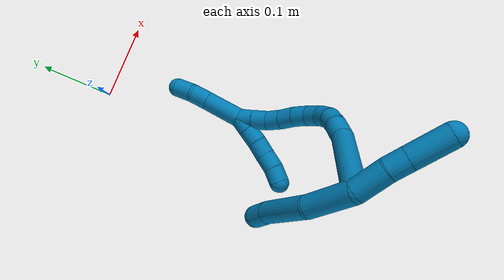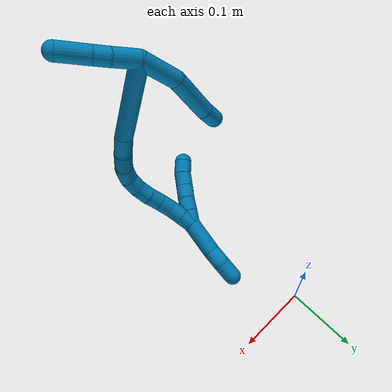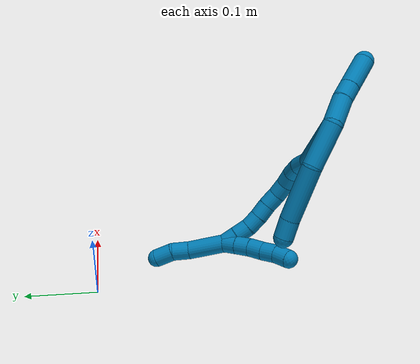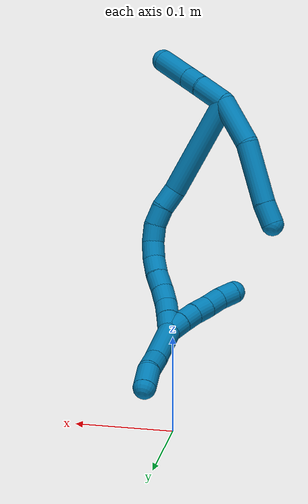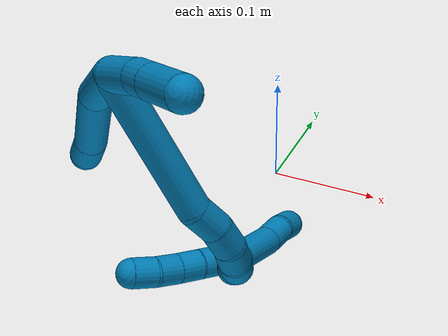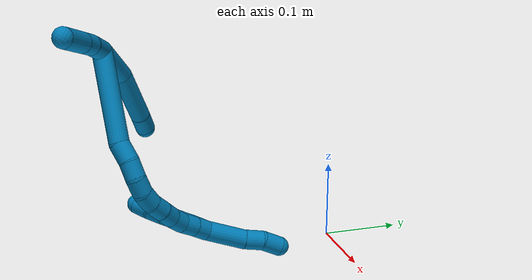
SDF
<sdf version="1.7">
 <world name="default">
  <model name="9">
   <static>0</static>
   <link name="9">
    <collision name="collision-cylinder-e_1_2_8">
     <pose>-0.006934 -0.016864 -0.021307 2.47207 -0.249863 -0.692938</pose>
     <geometry><cylinder><radius>0.0125</radius><length>0.056087</length></cylinder></geometry>
     <surface>
      <friction><ode><mu>1.16</mu><mu2>1.16</mu2><slip1>0</slip1><slip2>0</slip2></ode></friction>
      <contact><ode><kp>1e+06</kp><kd>1</kd><max_vel>0</max_vel><min_depth>0.001</min_depth></ode></contact>
     </surface>
    </collision>
    <visual name="visual-cylinder-e_1_2_8">
     <pose>-0.006934 -0.016864 -0.021307 2.47207 -0.249863 -0.692938</pose>
     <geometry><cylinder><radius>0.0125</radius><length>0.056087</length></cylinder></geometry>
     <material><ambient>0 0.490196 0.709804 1</ambient></material>
    </visual>
    <collision name="collision-cylinder-e_2_8_9">
     <pose>-0.01194 -0.0554 -0.069904 2.47044 0.055303 0.158277</pose>
     <geometry><cylinder><radius>0.0125</radius><length>0.069805</length></cylinder></geometry>
     <surface>
      <friction><ode><mu>1.16</mu><mu2>1.16</mu2><slip1>0</slip1><slip2>0</slip2></ode></friction>
      <contact><ode><kp>1e+06</kp><kd>1</kd><max_vel>0</max_vel><min_depth>0.001</min_depth></ode></contact>
     </surface>
    </collision>
    <visual name="visual-cylinder-e_2_8_9">
     <pose>-0.01194 -0.0554 -0.069904 2.47044 0.055303 0.158277</pose>
     <geometry><cylinder><radius>0.0125</radius><length>0.069805</length></cylinder></geometry>
     <material><ambient>0 0.490196 0.709804 1</ambient></material>
    </visual>
    <collision name="collision-cylinder-e_3_9_6">
     <pose>-0.010199 -0.085337 -0.105966 2.38589 -0.015698 -0.039545</pose>
     <geometry><cylinder><radius>0.0125</radius><length>0.024107</length></cylinder></geometry>
     <surface>
      <friction><ode><mu>1.16</mu><mu2>1.16</mu2><slip1>0</slip1><slip2>0</slip2></ode></friction>
      <contact><ode><kp>1e+06</kp><kd>1</kd><max_vel>0</max_vel><min_depth>0.001</min_depth></ode></contact>
     </surface>
    </collision>
    <visual name="visual-cylinder-e_3_9_6">
     <pose>-0.010199 -0.085337 -0.105966 2.38589 -0.015698 -0.039545</pose>
     <geometry><cylinder><radius>0.0125</radius><length>0.024107</length></cylinder></geometry>
     <material><ambient>0 0.490196 0.709804 1</ambient></material>
    </visual>
    <collision name="collision-cylinder-e_1_2_10">
     <pose>0.010461 0.011008 0.009589 -0.854196 0.621749 -0.29039</pose>
     <geometry><cylinder><radius>0.0125</radius><length>0.03592</length></cylinder></geometry>
     <surface>
      <friction><ode><mu>1.16</mu><mu2>1.16</mu2><slip1>0</slip1><slip2>0</slip2></ode></friction>
      <contact><ode><kp>1e+06</kp><kd>1</kd><max_vel>0</max_vel><min_depth>0.001</min_depth></ode></contact>
     </surface>
    </collision>
    <visual name="visual-cylinder-e_1_2_10">
     <pose>0.010461 0.011008 0.009589 -0.854196 0.621749 -0.29039</pose>
     <geometry><cylinder><radius>0.0125</radius><length>0.03592</length></cylinder></geometry>
     <material><ambient>0 0.490196 0.709804 1</ambient></material>
    </visual>
    <collision name="collision-cylinder-e_2_10_11">
     <pose>0.02769 0.027251 0.025306 -0.706958 0.698565 -0.267173</pose>
     <geometry><cylinder><radius>0.0125</radius><length>0.021049</length></cylinder></geometry>
     <surface>
      <friction><ode><mu>1.16</mu><mu2>1.16</mu2><slip1>0</slip1><slip2>0</slip2></ode></friction>
      <contact><ode><kp>1e+06</kp><kd>1</kd><max_vel>0</max_vel><min_depth>0.001</min_depth></ode></contact>
     </surface>
    </collision>
    <visual name="visual-cylinder-e_2_10_11">
     <pose>0.02769 0.027251 0.025306 -0.706958 0.698565 -0.267173</pose>
     <geometry><cylinder><radius>0.0125</radius><length>0.021049</length></cylinder></geometry>
     <material><ambient>0 0.490196 0.709804 1</ambient></material>
    </visual>
    <collision name="collision-cylinder-e_3_11_5">
     <pose>0.048295 0.043139 0.044002 -0.703113 0.698535 -0.265599</pose>
     <geometry><cylinder><radius>0.0125</radius><length>0.043031</length></cylinder></geometry>
     <surface>
      <friction><ode><mu>1.16</mu><mu2>1.16</mu2><slip1>0</slip1><slip2>0</slip2></ode></friction>
      <contact><ode><kp>1e+06</kp><kd>1</kd><max_vel>0</max_vel><min_depth>0.001</min_depth></ode></contact>
     </surface>
    </collision>
    <visual name="visual-cylinder-e_3_11_5">
     <pose>0.048295 0.043139 0.044002 -0.703113 0.698535 -0.265599</pose>
     <geometry><cylinder><radius>0.0125</radius><length>0.043031</length></cylinder></geometry>
     <material><ambient>0 0.490196 0.709804 1</ambient></material>
    </visual>
    <collision name="collision-cylinder-e_1_2_12">
     <pose>0.044351 -0.011176 -0.034389 2.82737 0.886802 2.49771</pose>
     <geometry><cylinder><radius>0.0125</radius><length>0.114447</length></cylinder></geometry>
     <surface>
      <friction><ode><mu>1.16</mu><mu2>1.16</mu2><slip1>0</slip1><slip2>0</slip2></ode></friction>
      <contact><ode><kp>1e+06</kp><kd>1</kd><max_vel>0</max_vel><min_depth>0.001</min_depth></ode></contact>
     </surface>
    </collision>
    <visual name="visual-cylinder-e_1_2_12">
     <pose>0.044351 -0.011176 -0.034389 2.82737 0.886802 2.49771</pose>
     <geometry><cylinder><radius>0.0125</radius><length>0.114447</length></cylinder></geometry>
     <material><ambient>0 0.490196 0.709804 1</ambient></material>
    </visual>
    <collision name="collision-cylinder-e_2_12_13">
     <pose>0.09623 -0.02205 -0.078181 -3.10954 0.674775 -3.05028</pose>
     <geometry><cylinder><radius>0.0125</radius><length>0.024097</length></cylinder></geometry>
     <surface>
      <friction><ode><mu>1.16</mu><mu2>1.16</mu2><slip1>0</slip1><slip2>0</slip2></ode></friction>
      <contact><ode><kp>1e+06</kp><kd>1</kd><max_vel>0</max_vel><min_depth>0.001</min_depth></ode></contact>
     </surface>
    </collision>
    <visual name="visual-cylinder-e_2_12_13">
     <pose>0.09623 -0.02205 -0.078181 -3.10954 0.674775 -3.05028</pose>
     <geometry><cylinder><radius>0.0125</radius><length>0.024097</length></cylinder></geometry>
     <material><ambient>0 0.490196 0.709804 1</ambient></material>
    </visual>
    <collision name="collision-cylinder-e_3_13_14">
     <pose>0.110271 -0.02387 -0.095777 2.88828 0.656029 2.42548</pose>
     <geometry><cylinder><radius>0.0125</radius><length>0.02136</length></cylinder></geometry>
     <surface>
      <friction><ode><mu>1.16</mu><mu2>1.16</mu2><slip1>0</slip1><slip2>0</slip2></ode></friction>
      <contact><ode><kp>1e+06</kp><kd>1</kd><max_vel>0</max_vel><min_depth>0.001</min_depth></ode></contact>
     </surface>
    </collision>
    <visual name="visual-cylinder-e_3_13_14">
     <pose>0.110271 -0.02387 -0.095777 2.88828 0.656029 2.42548</pose>
     <geometry><cylinder><radius>0.0125</radius><length>0.02136</length></cylinder></geometry>
     <material><ambient>0 0.490196 0.709804 1</ambient></material>
    </visual>
    <collision name="collision-cylinder-e_4_14_15">
     <pose>0.120462 -0.030011 -0.1124 2.69664 0.375006 1.39579</pose>
     <geometry><cylinder><radius>0.0125</radius><length>0.020074</length></cylinder></geometry>
     <surface>
      <friction><ode><mu>1.16</mu><mu2>1.16</mu2><slip1>0</slip1><slip2>0</slip2></ode></friction>
      <contact><ode><kp>1e+06</kp><kd>1</kd><max_vel>0</max_vel><min_depth>0.001</min_depth></ode></contact>
     </surface>
    </collision>
    <visual name="visual-cylinder-e_4_14_15">
     <pose>0.120462 -0.030011 -0.1124 2.69664 0.375006 1.39579</pose>
     <geometry><cylinder><radius>0.0125</radius><length>0.020074</length></cylinder></geometry>
     <material><ambient>0 0.490196 0.709804 1</ambient></material>
    </visual>
    <collision name="collision-cylinder-e_5_15_16">
     <pose>0.124744 -0.037992 -0.129993 2.73346 0.060524 0.290492</pose>
     <geometry><cylinder><radius>0.0125</radius><length>0.020001</length></cylinder></geometry>
     <surface>
      <friction><ode><mu>1.16</mu><mu2>1.16</mu2><slip1>0</slip1><slip2>0</slip2></ode></friction>
      <contact><ode><kp>1e+06</kp><kd>1</kd><max_vel>0</max_vel><min_depth>0.001</min_depth></ode></contact>
     </surface>
    </collision>
    <visual name="visual-cylinder-e_5_15_16">
     <pose>0.124744 -0.037992 -0.129993 2.73346 0.060524 0.290492</pose>
     <geometry><cylinder><radius>0.0125</radius><length>0.020001</length></cylinder></geometry>
     <material><ambient>0 0.490196 0.709804 1</ambient></material>
    </visual>
    <collision name="collision-cylinder-e_6_16_17">
     <pose>0.123556 -0.045386 -0.148378 2.78538 -0.180135 -0.929997</pose>
     <geometry><cylinder><radius>0.0125</radius><length>0.020005</length></cylinder></geometry>
     <surface>
      <friction><ode><mu>1.16</mu><mu2>1.16</mu2><slip1>0</slip1><slip2>0</slip2></ode></friction>
      <contact><ode><kp>1e+06</kp><kd>1</kd><max_vel>0</max_vel><min_depth>0.001</min_depth></ode></contact>
     </surface>
    </collision>
    <visual name="visual-cylinder-e_6_16_17">
     <pose>0.123556 -0.045386 -0.148378 2.78538 -0.180135 -0.929997</pose>
     <geometry><cylinder><radius>0.0125</radius><length>0.020005</length></cylinder></geometry>
     <material><ambient>0 0.490196 0.709804 1</ambient></material>
    </visual>
    <collision name="collision-cylinder-e_7_17_18">
     <pose>0.119401 -0.05325 -0.166251 2.66808 -0.23851 -0.921865</pose>
     <geometry><cylinder><radius>0.0125</radius><length>0.020007</length></cylinder></geometry>
     <surface>
      <friction><ode><mu>1.16</mu><mu2>1.16</mu2><slip1>0</slip1><slip2>0</slip2></ode></friction>
      <contact><ode><kp>1e+06</kp><kd>1</kd><max_vel>0</max_vel><min_depth>0.001</min_depth></ode></contact>
     </surface>
    </collision>
    <visual name="visual-cylinder-e_7_17_18">
     <pose>0.119401 -0.05325 -0.166251 2.66808 -0.23851 -0.921865</pose>
     <geometry><cylinder><radius>0.0125</radius><length>0.020007</length></cylinder></geometry>
     <material><ambient>0 0.490196 0.709804 1</ambient></material>
    </visual>
    <collision name="collision-cylinder-e_8_18_19">
     <pose>0.11435 -0.060957 -0.183962 2.79484 -0.272095 -1.32689</pose>
     <geometry><cylinder><radius>0.0125</radius><length>0.020003</length></cylinder></geometry>
     <surface>
      <friction><ode><mu>1.16</mu><mu2>1.16</mu2><slip1>0</slip1><slip2>0</slip2></ode></friction>
      <contact><ode><kp>1e+06</kp><kd>1</kd><max_vel>0</max_vel><min_depth>0.001</min_depth></ode></contact>
     </surface>
    </collision>
    <visual name="visual-cylinder-e_8_18_19">
     <pose>0.11435 -0.060957 -0.183962 2.79484 -0.272095 -1.32689</pose>
     <geometry><cylinder><radius>0.0125</radius><length>0.020003</length></cylinder></geometry>
     <material><ambient>0 0.490196 0.709804 1</ambient></material>
    </visual>
    <collision name="collision-cylinder-e_9_19_20">
     <pose>0.108327 -0.06541 -0.202378 3.01626 -0.339972 -2.44061</pose>
     <geometry><cylinder><radius>0.0125</radius><length>0.020004</length></cylinder></geometry>
     <surface>
      <friction><ode><mu>1.16</mu><mu2>1.16</mu2><slip1>0</slip1><slip2>0</slip2></ode></friction>
      <contact><ode><kp>1e+06</kp><kd>1</kd><max_vel>0</max_vel><min_depth>0.001</min_depth></ode></contact>
     </surface>
    </collision>
    <visual name="visual-cylinder-e_9_19_20">
     <pose>0.108327 -0.06541 -0.202378 3.01626 -0.339972 -2.44061</pose>
     <geometry><cylinder><radius>0.0125</radius><length>0.020004</length></cylinder></geometry>
     <material><ambient>0 0.490196 0.709804 1</ambient></material>
    </visual>
    <collision name="collision-cylinder-e_10_20_1">
     <pose>0.102073 -0.067856 -0.221215 3.00868 -0.296089 -2.30209</pose>
     <geometry><cylinder><radius>0.0125</radius><length>0.020002</length></cylinder></geometry>
     <surface>
      <friction><ode><mu>1.16</mu><mu2>1.16</mu2><slip1>0</slip1><slip2>0</slip2></ode></friction>
      <contact><ode><kp>1e+06</kp><kd>1</kd><max_vel>0</max_vel><min_depth>0.001</min_depth></ode></contact>
     </surface>
    </collision>
    <visual name="visual-cylinder-e_10_20_1">
     <pose>0.102073 -0.067856 -0.221215 3.00868 -0.296089 -2.30209</pose>
     <geometry><cylinder><radius>0.0125</radius><length>0.020002</length></cylinder></geometry>
     <material><ambient>0 0.490196 0.709804 1</ambient></material>
    </visual>
    <collision name="collision-cylinder-e_1_1_21">
     <pose>0.097454 -0.074194 -0.222247 0.540475 -0.170932 -0.047457</pose>
     <geometry><cylinder><radius>0.0125</radius><length>0.02</length></cylinder></geometry>
     <surface>
      <friction><ode><mu>1.16</mu><mu2>1.16</mu2><slip1>0</slip1><slip2>0</slip2></ode></friction>
      <contact><ode><kp>1e+06</kp><kd>1</kd><max_vel>0</max_vel><min_depth>0.001</min_depth></ode></contact>
     </surface>
    </collision>
    <visual name="visual-cylinder-e_1_1_21">
     <pose>0.097454 -0.074194 -0.222247 0.540475 -0.170932 -0.047457</pose>
     <geometry><cylinder><radius>0.0125</radius><length>0.02</length></cylinder></geometry>
     <material><ambient>0 0.490196 0.709804 1</ambient></material>
    </visual>
    <collision name="collision-cylinder-e_2_21_22">
     <pose>0.094319 -0.084576 -0.205446 0.566486 -0.143858 -0.041939</pose>
     <geometry><cylinder><radius>0.0125</radius><length>0.02</length></cylinder></geometry>
     <surface>
      <friction><ode><mu>1.16</mu><mu2>1.16</mu2><slip1>0</slip1><slip2>0</slip2></ode></friction>
      <contact><ode><kp>1e+06</kp><kd>1</kd><max_vel>0</max_vel><min_depth>0.001</min_depth></ode></contact>
     </surface>
    </collision>
    <visual name="visual-cylinder-e_2_21_22">
     <pose>0.094319 -0.084576 -0.205446 0.566486 -0.143858 -0.041939</pose>
     <geometry><cylinder><radius>0.0125</radius><length>0.02</length></cylinder></geometry>
     <material><ambient>0 0.490196 0.709804 1</ambient></material>
    </visual>
    <collision name="collision-cylinder-e_3_22_23">
     <pose>0.091129 -0.0959 -0.189301 0.657076 -0.176553 -0.060324</pose>
     <geometry><cylinder><radius>0.0125</radius><length>0.02</length></cylinder></geometry>
     <surface>
      <friction><ode><mu>1.16</mu><mu2>1.16</mu2><slip1>0</slip1><slip2>0</slip2></ode></friction>
      <contact><ode><kp>1e+06</kp><kd>1</kd><max_vel>0</max_vel><min_depth>0.001</min_depth></ode></contact>
     </surface>
    </collision>
    <visual name="visual-cylinder-e_3_22_23">
     <pose>0.091129 -0.0959 -0.189301 0.657076 -0.176553 -0.060324</pose>
     <geometry><cylinder><radius>0.0125</radius><length>0.02</length></cylinder></geometry>
     <material><ambient>0 0.490196 0.709804 1</ambient></material>
    </visual>
    <collision name="collision-cylinder-e_4_23_24">
     <pose>0.087416 -0.107353 -0.173346 0.587972 -0.19702 -0.059825</pose>
     <geometry><cylinder><radius>0.0125</radius><length>0.02</length></cylinder></geometry>
     <surface>
      <friction><ode><mu>1.16</mu><mu2>1.16</mu2><slip1>0</slip1><slip2>0</slip2></ode></friction>
      <contact><ode><kp>1e+06</kp><kd>1</kd><max_vel>0</max_vel><min_depth>0.001</min_depth></ode></contact>
     </surface>
    </collision>
    <visual name="visual-cylinder-e_4_23_24">
     <pose>0.087416 -0.107353 -0.173346 0.587972 -0.19702 -0.059825</pose>
     <geometry><cylinder><radius>0.0125</radius><length>0.02</length></cylinder></geometry>
     <material><ambient>0 0.490196 0.709804 1</ambient></material>
    </visual>
    <collision name="collision-cylinder-e_5_24_4">
     <pose>0.082108 -0.119006 -0.158104 0.720135 -0.341599 -0.129688</pose>
     <geometry><cylinder><radius>0.0125</radius><length>0.02</length></cylinder></geometry>
     <surface>
      <friction><ode><mu>1.16</mu><mu2>1.16</mu2><slip1>0</slip1><slip2>0</slip2></ode></friction>
      <contact><ode><kp>1e+06</kp><kd>1</kd><max_vel>0</max_vel><min_depth>0.001</min_depth></ode></contact>
     </surface>
    </collision>
    <visual name="visual-cylinder-e_5_24_4">
     <pose>0.082108 -0.119006 -0.158104 0.720135 -0.341599 -0.129688</pose>
     <geometry><cylinder><radius>0.0125</radius><length>0.02</length></cylinder></geometry>
     <material><ambient>0 0.490196 0.709804 1</ambient></material>
    </visual>
    <collision name="collision-cylinder-e_1_1_25">
     <pose>0.094892 -0.062506 -0.254992 -2.87566 -0.16771 1.12208</pose>
     <geometry><cylinder><radius>0.0125</radius><length>0.051079</length></cylinder></geometry>
     <surface>
      <friction><ode><mu>1.16</mu><mu2>1.16</mu2><slip1>0</slip1><slip2>0</slip2></ode></friction>
      <contact><ode><kp>1e+06</kp><kd>1</kd><max_vel>0</max_vel><min_depth>0.001</min_depth></ode></contact>
     </surface>
    </collision>
    <visual name="visual-cylinder-e_1_1_25">
     <pose>0.094892 -0.062506 -0.254992 -2.87566 -0.16771 1.12208</pose>
     <geometry><cylinder><radius>0.0125</radius><length>0.051079</length></cylinder></geometry>
     <material><ambient>0 0.490196 0.709804 1</ambient></material>
    </visual>
    <collision name="collision-cylinder-e_2_25_26">
     <pose>0.08718 -0.05155 -0.289887 -2.75315 -0.292539 1.28567</pose>
     <geometry><cylinder><radius>0.0125</radius><length>0.023922</length></cylinder></geometry>
     <surface>
      <friction><ode><mu>1.16</mu><mu2>1.16</mu2><slip1>0</slip1><slip2>0</slip2></ode></friction>
      <contact><ode><kp>1e+06</kp><kd>1</kd><max_vel>0</max_vel><min_depth>0.001</min_depth></ode></contact>
     </surface>
    </collision>
    <visual name="visual-cylinder-e_2_25_26">
     <pose>0.08718 -0.05155 -0.289887 -2.75315 -0.292539 1.28567</pose>
     <geometry><cylinder><radius>0.0125</radius><length>0.023922</length></cylinder></geometry>
     <material><ambient>0 0.490196 0.709804 1</ambient></material>
    </visual>
    <collision name="collision-cylinder-e_3_26_3">
     <pose>0.081622 -0.046122 -0.312759 -3.05292 -0.169458 2.17882</pose>
     <geometry><cylinder><radius>0.0125</radius><length>0.025</length></cylinder></geometry>
     <surface>
      <friction><ode><mu>1.16</mu><mu2>1.16</mu2><slip1>0</slip1><slip2>0</slip2></ode></friction>
      <contact><ode><kp>1e+06</kp><kd>1</kd><max_vel>0</max_vel><min_depth>0.001</min_depth></ode></contact>
     </surface>
    </collision>
    <visual name="visual-cylinder-e_3_26_3">
     <pose>0.081622 -0.046122 -0.312759 -3.05292 -0.169458 2.17882</pose>
     <geometry><cylinder><radius>0.0125</radius><length>0.025</length></cylinder></geometry>
     <material><ambient>0 0.490196 0.709804 1</ambient></material>
    </visual>
    <collision name="collision-sphere-3">
     <pose>0.079514 -0.045031 -0.325032 0 -0 0</pose>
     <geometry><sphere><radius>0.0125</radius></sphere></geometry>
     <surface>
      <friction><ode><mu>1.16</mu><mu2>1.16</mu2><slip1>0</slip1><slip2>0</slip2></ode></friction>
      <contact><ode><kp>1e+06</kp><kd>1</kd><max_vel>0</max_vel><min_depth>0.001</min_depth></ode></contact>
     </surface>
    </collision>
    <visual name="visual-sphere-3">
     <pose>0.079514 -0.045031 -0.325032 0 -0 0</pose>
     <geometry><sphere><radius>0.0125</radius></sphere></geometry>
     <material><ambient>0 0.490196 0.709804 1</ambient></material>
    </visual>
    <collision name="collision-sphere-26">
     <pose>0.08373 -0.047213 -0.300487 0 -0 0</pose>
     <geometry><sphere><radius>0.0125</radius></sphere></geometry>
     <surface>
      <friction><ode><mu>1.16</mu><mu2>1.16</mu2><slip1>0</slip1><slip2>0</slip2></ode></friction>
      <contact><ode><kp>1e+06</kp><kd>1</kd><max_vel>0</max_vel><min_depth>0.001</min_depth></ode></contact>
     </surface>
    </collision>
    <visual name="visual-sphere-26">
     <pose>0.08373 -0.047213 -0.300487 0 -0 0</pose>
     <geometry><sphere><radius>0.0125</radius></sphere></geometry>
     <material><ambient>0 0.490196 0.709804 1</ambient></material>
    </visual>
    <collision name="collision-sphere-25">
     <pose>0.090629 -0.055888 -0.279288 0 -0 0</pose>
     <geometry><sphere><radius>0.0125</radius></sphere></geometry>
     <surface>
      <friction><ode><mu>1.16</mu><mu2>1.16</mu2><slip1>0</slip1><slip2>0</slip2></ode></friction>
      <contact><ode><kp>1e+06</kp><kd>1</kd><max_vel>0</max_vel><min_depth>0.001</min_depth></ode></contact>
     </surface>
    </collision>
    <visual name="visual-sphere-25">
     <pose>0.090629 -0.055888 -0.279288 0 -0 0</pose>
     <geometry><sphere><radius>0.0125</radius></sphere></geometry>
     <material><ambient>0 0.490196 0.709804 1</ambient></material>
    </visual>
    <collision name="collision-sphere-4">
     <pose>0.078758 -0.12522 -0.151021 0 -0 0</pose>
     <geometry><sphere><radius>0.0125</radius></sphere></geometry>
     <surface>
      <friction><ode><mu>1.16</mu><mu2>1.16</mu2><slip1>0</slip1><slip2>0</slip2></ode></friction>
      <contact><ode><kp>1e+06</kp><kd>1</kd><max_vel>0</max_vel><min_depth>0.001</min_depth></ode></contact>
     </surface>
    </collision>
    <visual name="visual-sphere-4">
     <pose>0.078758 -0.12522 -0.151021 0 -0 0</pose>
     <geometry><sphere><radius>0.0125</radius></sphere></geometry>
     <material><ambient>0 0.490196 0.709804 1</ambient></material>
    </visual>
    <collision name="collision-sphere-24">
     <pose>0.085458 -0.112792 -0.165186 0 -0 0</pose>
     <geometry><sphere><radius>0.0125</radius></sphere></geometry>
     <surface>
      <friction><ode><mu>1.16</mu><mu2>1.16</mu2><slip1>0</slip1><slip2>0</slip2></ode></friction>
      <contact><ode><kp>1e+06</kp><kd>1</kd><max_vel>0</max_vel><min_depth>0.001</min_depth></ode></contact>
     </surface>
    </collision>
    <visual name="visual-sphere-24">
     <pose>0.085458 -0.112792 -0.165186 0 -0 0</pose>
     <geometry><sphere><radius>0.0125</radius></sphere></geometry>
     <material><ambient>0 0.490196 0.709804 1</ambient></material>
    </visual>
    <collision name="collision-sphere-23">
     <pose>0.089373 -0.101913 -0.181506 0 -0 0</pose>
     <geometry><sphere><radius>0.0125</radius></sphere></geometry>
     <surface>
      <friction><ode><mu>1.16</mu><mu2>1.16</mu2><slip1>0</slip1><slip2>0</slip2></ode></friction>
      <contact><ode><kp>1e+06</kp><kd>1</kd><max_vel>0</max_vel><min_depth>0.001</min_depth></ode></contact>
     </surface>
    </collision>
    <visual name="visual-sphere-23">
     <pose>0.089373 -0.101913 -0.181506 0 -0 0</pose>
     <geometry><sphere><radius>0.0125</radius></sphere></geometry>
     <material><ambient>0 0.490196 0.709804 1</ambient></material>
    </visual>
    <collision name="collision-sphere-22">
     <pose>0.092886 -0.089887 -0.197095 0 -0 0</pose>
     <geometry><sphere><radius>0.0125</radius></sphere></geometry>
     <surface>
      <friction><ode><mu>1.16</mu><mu2>1.16</mu2><slip1>0</slip1><slip2>0</slip2></ode></friction>
      <contact><ode><kp>1e+06</kp><kd>1</kd><max_vel>0</max_vel><min_depth>0.001</min_depth></ode></contact>
     </surface>
    </collision>
    <visual name="visual-sphere-22">
     <pose>0.092886 -0.089887 -0.197095 0 -0 0</pose>
     <geometry><sphere><radius>0.0125</radius></sphere></geometry>
     <material><ambient>0 0.490196 0.709804 1</ambient></material>
    </visual>
    <collision name="collision-sphere-21">
     <pose>0.095753 -0.079265 -0.213797 0 -0 0</pose>
     <geometry><sphere><radius>0.0125</radius></sphere></geometry>
     <surface>
      <friction><ode><mu>1.16</mu><mu2>1.16</mu2><slip1>0</slip1><slip2>0</slip2></ode></friction>
      <contact><ode><kp>1e+06</kp><kd>1</kd><max_vel>0</max_vel><min_depth>0.001</min_depth></ode></contact>
     </surface>
    </collision>
    <visual name="visual-sphere-21">
     <pose>0.095753 -0.079265 -0.213797 0 -0 0</pose>
     <geometry><sphere><radius>0.0125</radius></sphere></geometry>
     <material><ambient>0 0.490196 0.709804 1</ambient></material>
    </visual>
    <collision name="collision-sphere-1">
     <pose>0.099155 -0.069124 -0.230696 0 -0 0</pose>
     <geometry><sphere><radius>0.0125</radius></sphere></geometry>
     <surface>
      <friction><ode><mu>1.16</mu><mu2>1.16</mu2><slip1>0</slip1><slip2>0</slip2></ode></friction>
      <contact><ode><kp>1e+06</kp><kd>1</kd><max_vel>0</max_vel><min_depth>0.001</min_depth></ode></contact>
     </surface>
    </collision>
    <visual name="visual-sphere-1">
     <pose>0.099155 -0.069124 -0.230696 0 -0 0</pose>
     <geometry><sphere><radius>0.0125</radius></sphere></geometry>
     <material><ambient>0 0.490196 0.709804 1</ambient></material>
    </visual>
    <collision name="collision-sphere-11">
     <pose>0.034459 0.032486 0.031433 0 -0 0</pose>
     <geometry><sphere><radius>0.0125</radius></sphere></geometry>
     <surface>
      <friction><ode><mu>1.16</mu><mu2>1.16</mu2><slip1>0</slip1><slip2>0</slip2></ode></friction>
      <contact><ode><kp>1e+06</kp><kd>1</kd><max_vel>0</max_vel><min_depth>0.001</min_depth></ode></contact>
     </surface>
    </collision>
    <visual name="visual-sphere-11">
     <pose>0.034459 0.032486 0.031433 0 -0 0</pose>
     <geometry><sphere><radius>0.0125</radius></sphere></geometry>
     <material><ambient>0 0.490196 0.709804 1</ambient></material>
    </visual>
    <collision name="collision-sphere-10">
     <pose>0.020922 0.022016 0.019178 0 -0 0</pose>
     <geometry><sphere><radius>0.0125</radius></sphere></geometry>
     <surface>
      <friction><ode><mu>1.16</mu><mu2>1.16</mu2><slip1>0</slip1><slip2>0</slip2></ode></friction>
      <contact><ode><kp>1e+06</kp><kd>1</kd><max_vel>0</max_vel><min_depth>0.001</min_depth></ode></contact>
     </surface>
    </collision>
    <visual name="visual-sphere-10">
     <pose>0.020922 0.022016 0.019178 0 -0 0</pose>
     <geometry><sphere><radius>0.0125</radius></sphere></geometry>
     <material><ambient>0 0.490196 0.709804 1</ambient></material>
    </visual>
    <collision name="collision-sphere-6">
     <pose>-0.010389 -0.093603 -0.114738 0 -0 0</pose>
     <geometry><sphere><radius>0.0125</radius></sphere></geometry>
     <surface>
      <friction><ode><mu>1.16</mu><mu2>1.16</mu2><slip1>0</slip1><slip2>0</slip2></ode></friction>
      <contact><ode><kp>1e+06</kp><kd>1</kd><max_vel>0</max_vel><min_depth>0.001</min_depth></ode></contact>
     </surface>
    </collision>
    <visual name="visual-sphere-6">
     <pose>-0.010389 -0.093603 -0.114738 0 -0 0</pose>
     <geometry><sphere><radius>0.0125</radius></sphere></geometry>
     <material><ambient>0 0.490196 0.709804 1</ambient></material>
    </visual>
    <collision name="collision-sphere-9">
     <pose>-0.01001 -0.077072 -0.097195 0 -0 0</pose>
     <geometry><sphere><radius>0.0125</radius></sphere></geometry>
     <surface>
      <friction><ode><mu>1.16</mu><mu2>1.16</mu2><slip1>0</slip1><slip2>0</slip2></ode></friction>
      <contact><ode><kp>1e+06</kp><kd>1</kd><max_vel>0</max_vel><min_depth>0.001</min_depth></ode></contact>
     </surface>
    </collision>
    <visual name="visual-sphere-9">
     <pose>-0.01001 -0.077072 -0.097195 0 -0 0</pose>
     <geometry><sphere><radius>0.0125</radius></sphere></geometry>
     <material><ambient>0 0.490196 0.709804 1</ambient></material>
    </visual>
    <collision name="collision-sphere-2">
     <geometry><sphere><radius>0.0125</radius></sphere></geometry>
     <surface>
      <friction><ode><mu>1.16</mu><mu2>1.16</mu2><slip1>0</slip1><slip2>0</slip2></ode></friction>
      <contact><ode><kp>1e+06</kp><kd>1</kd><max_vel>0</max_vel><min_depth>0.001</min_depth></ode></contact>
     </surface>
    </collision>
    <visual name="visual-sphere-2">
     <geometry><sphere><radius>0.0125</radius></sphere></geometry>
     <material><ambient>0 0.490196 0.709804 1</ambient></material>
    </visual>
    <collision name="collision-sphere-19">
     <pose>0.111662 -0.064231 -0.193022 0 -0 0</pose>
     <geometry><sphere><radius>0.0125</radius></sphere></geometry>
     <surface>
      <friction><ode><mu>1.16</mu><mu2>1.16</mu2><slip1>0</slip1><slip2>0</slip2></ode></friction>
      <contact><ode><kp>1e+06</kp><kd>1</kd><max_vel>0</max_vel><min_depth>0.001</min_depth></ode></contact>
     </surface>
    </collision>
    <visual name="visual-sphere-19">
     <pose>0.111662 -0.064231 -0.193022 0 -0 0</pose>
     <geometry><sphere><radius>0.0125</radius></sphere></geometry>
     <material><ambient>0 0.490196 0.709804 1</ambient></material>
    </visual>
    <collision name="collision-sphere-8">
     <pose>-0.013869 -0.033727 -0.042613 0 -0 0</pose>
     <geometry><sphere><radius>0.0125</radius></sphere></geometry>
     <surface>
      <friction><ode><mu>1.16</mu><mu2>1.16</mu2><slip1>0</slip1><slip2>0</slip2></ode></friction>
      <contact><ode><kp>1e+06</kp><kd>1</kd><max_vel>0</max_vel><min_depth>0.001</min_depth></ode></contact>
     </surface>
    </collision>
    <visual name="visual-sphere-8">
     <pose>-0.013869 -0.033727 -0.042613 0 -0 0</pose>
     <geometry><sphere><radius>0.0125</radius></sphere></geometry>
     <material><ambient>0 0.490196 0.709804 1</ambient></material>
    </visual>
    <collision name="collision-sphere-5">
     <pose>0.062132 0.053793 0.056571 0 -0 0</pose>
     <geometry><sphere><radius>0.0125</radius></sphere></geometry>
     <surface>
      <friction><ode><mu>1.16</mu><mu2>1.16</mu2><slip1>0</slip1><slip2>0</slip2></ode></friction>
      <contact><ode><kp>1e+06</kp><kd>1</kd><max_vel>0</max_vel><min_depth>0.001</min_depth></ode></contact>
     </surface>
    </collision>
    <visual name="visual-sphere-5">
     <pose>0.062132 0.053793 0.056571 0 -0 0</pose>
     <geometry><sphere><radius>0.0125</radius></sphere></geometry>
     <material><ambient>0 0.490196 0.709804 1</ambient></material>
    </visual>
    <collision name="collision-sphere-12">
     <pose>0.088703 -0.022352 -0.068778 0 -0 0</pose>
     <geometry><sphere><radius>0.0125</radius></sphere></geometry>
     <surface>
      <friction><ode><mu>1.16</mu><mu2>1.16</mu2><slip1>0</slip1><slip2>0</slip2></ode></friction>
      <contact><ode><kp>1e+06</kp><kd>1</kd><max_vel>0</max_vel><min_depth>0.001</min_depth></ode></contact>
     </surface>
    </collision>
    <visual name="visual-sphere-12">
     <pose>0.088703 -0.022352 -0.068778 0 -0 0</pose>
     <geometry><sphere><radius>0.0125</radius></sphere></geometry>
     <material><ambient>0 0.490196 0.709804 1</ambient></material>
    </visual>
    <collision name="collision-sphere-13">
     <pose>0.103757 -0.021749 -0.087584 0 -0 0</pose>
     <geometry><sphere><radius>0.0125</radius></sphere></geometry>
     <surface>
      <friction><ode><mu>1.16</mu><mu2>1.16</mu2><slip1>0</slip1><slip2>0</slip2></ode></friction>
      <contact><ode><kp>1e+06</kp><kd>1</kd><max_vel>0</max_vel><min_depth>0.001</min_depth></ode></contact>
     </surface>
    </collision>
    <visual name="visual-sphere-13">
     <pose>0.103757 -0.021749 -0.087584 0 -0 0</pose>
     <geometry><sphere><radius>0.0125</radius></sphere></geometry>
     <material><ambient>0 0.490196 0.709804 1</ambient></material>
    </visual>
    <collision name="collision-sphere-14">
     <pose>0.116786 -0.025991 -0.10397 0 -0 0</pose>
     <geometry><sphere><radius>0.0125</radius></sphere></geometry>
     <surface>
      <friction><ode><mu>1.16</mu><mu2>1.16</mu2><slip1>0</slip1><slip2>0</slip2></ode></friction>
      <contact><ode><kp>1e+06</kp><kd>1</kd><max_vel>0</max_vel><min_depth>0.001</min_depth></ode></contact>
     </surface>
    </collision>
    <visual name="visual-sphere-14">
     <pose>0.116786 -0.025991 -0.10397 0 -0 0</pose>
     <geometry><sphere><radius>0.0125</radius></sphere></geometry>
     <material><ambient>0 0.490196 0.709804 1</ambient></material>
    </visual>
    <collision name="collision-sphere-15">
     <pose>0.124139 -0.034031 -0.120831 0 -0 0</pose>
     <geometry><sphere><radius>0.0125</radius></sphere></geometry>
     <surface>
      <friction><ode><mu>1.16</mu><mu2>1.16</mu2><slip1>0</slip1><slip2>0</slip2></ode></friction>
      <contact><ode><kp>1e+06</kp><kd>1</kd><max_vel>0</max_vel><min_depth>0.001</min_depth></ode></contact>
     </surface>
    </collision>
    <visual name="visual-sphere-15">
     <pose>0.124139 -0.034031 -0.120831 0 -0 0</pose>
     <geometry><sphere><radius>0.0125</radius></sphere></geometry>
     <material><ambient>0 0.490196 0.709804 1</ambient></material>
    </visual>
    <collision name="collision-sphere-16">
     <pose>0.125348 -0.041954 -0.139155 0 -0 0</pose>
     <geometry><sphere><radius>0.0125</radius></sphere></geometry>
     <surface>
      <friction><ode><mu>1.16</mu><mu2>1.16</mu2><slip1>0</slip1><slip2>0</slip2></ode></friction>
      <contact><ode><kp>1e+06</kp><kd>1</kd><max_vel>0</max_vel><min_depth>0.001</min_depth></ode></contact>
     </surface>
    </collision>
    <visual name="visual-sphere-16">
     <pose>0.125348 -0.041954 -0.139155 0 -0 0</pose>
     <geometry><sphere><radius>0.0125</radius></sphere></geometry>
     <material><ambient>0 0.490196 0.709804 1</ambient></material>
    </visual>
    <collision name="collision-sphere-17">
     <pose>0.121764 -0.048818 -0.157601 0 -0 0</pose>
     <geometry><sphere><radius>0.0125</radius></sphere></geometry>
     <surface>
      <friction><ode><mu>1.16</mu><mu2>1.16</mu2><slip1>0</slip1><slip2>0</slip2></ode></friction>
      <contact><ode><kp>1e+06</kp><kd>1</kd><max_vel>0</max_vel><min_depth>0.001</min_depth></ode></contact>
     </surface>
    </collision>
    <visual name="visual-sphere-17">
     <pose>0.121764 -0.048818 -0.157601 0 -0 0</pose>
     <geometry><sphere><radius>0.0125</radius></sphere></geometry>
     <material><ambient>0 0.490196 0.709804 1</ambient></material>
    </visual>
    <collision name="collision-sphere-18">
     <pose>0.117038 -0.057683 -0.174902 0 -0 0</pose>
     <geometry><sphere><radius>0.0125</radius></sphere></geometry>
     <surface>
      <friction><ode><mu>1.16</mu><mu2>1.16</mu2><slip1>0</slip1><slip2>0</slip2></ode></friction>
      <contact><ode><kp>1e+06</kp><kd>1</kd><max_vel>0</max_vel><min_depth>0.001</min_depth></ode></contact>
     </surface>
    </collision>
    <visual name="visual-sphere-18">
     <pose>0.117038 -0.057683 -0.174902 0 -0 0</pose>
     <geometry><sphere><radius>0.0125</radius></sphere></geometry>
     <material><ambient>0 0.490196 0.709804 1</ambient></material>
    </visual>
    <collision name="collision-sphere-20">
     <pose>0.104991 -0.066588 -0.211734 0 -0 0</pose>
     <geometry><sphere><radius>0.0125</radius></sphere></geometry>
     <surface>
      <friction><ode><mu>1.16</mu><mu2>1.16</mu2><slip1>0</slip1><slip2>0</slip2></ode></friction>
      <contact><ode><kp>1e+06</kp><kd>1</kd><max_vel>0</max_vel><min_depth>0.001</min_depth></ode></contact>
     </surface>
    </collision>
    <visual name="visual-sphere-20">
     <pose>0.104991 -0.066588 -0.211734 0 -0 0</pose>
     <geometry><sphere><radius>0.0125</radius></sphere></geometry>
     <material><ambient>0 0.490196 0.709804 1</ambient></material>
    </visual>
    <inertial>
     <pose>0.060813 -0.03838 -0.1117 0 -0 0</pose>
     <mass>0.75</mass>
     <inertia>
      <ixx>6.3e-05</ixx>
      <ixy>0</ixy>
      <ixz>0</ixz>
      <iyy>0.000141</iyy>
      <iyz>0</iyz>
      <izz>-7.6e-05</izz>
     </inertia>
    </inertial>
   </link>
   <pose>-0.000188 -0.294072 0.271858 0.808275 0.555423 -0.541133</pose>
  </model>
 </world>
</sdf>
